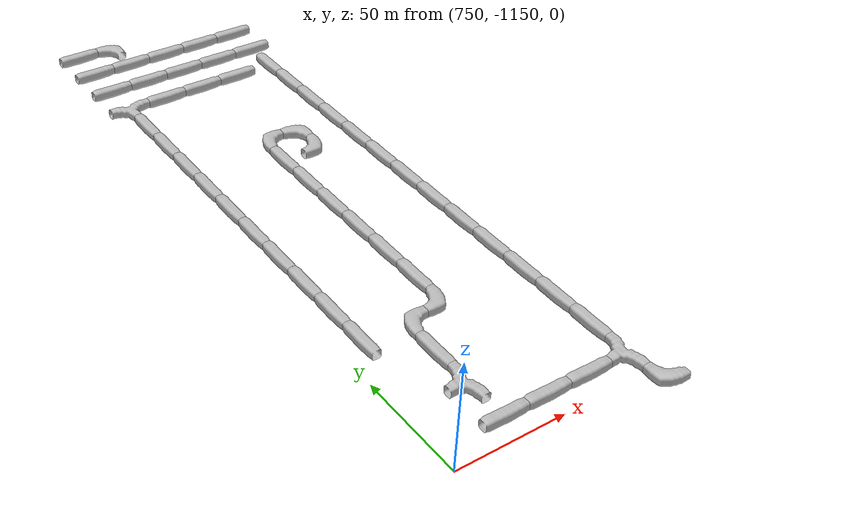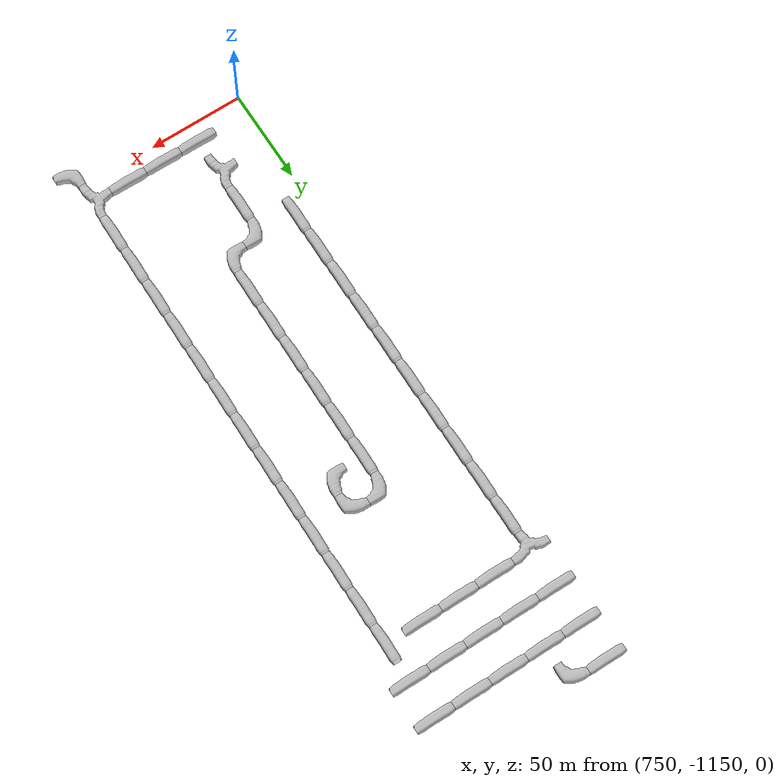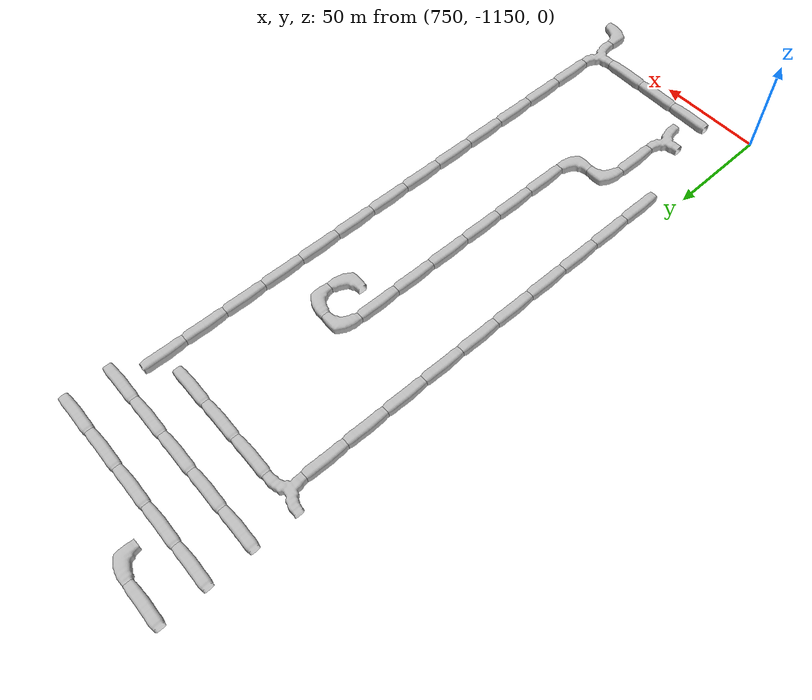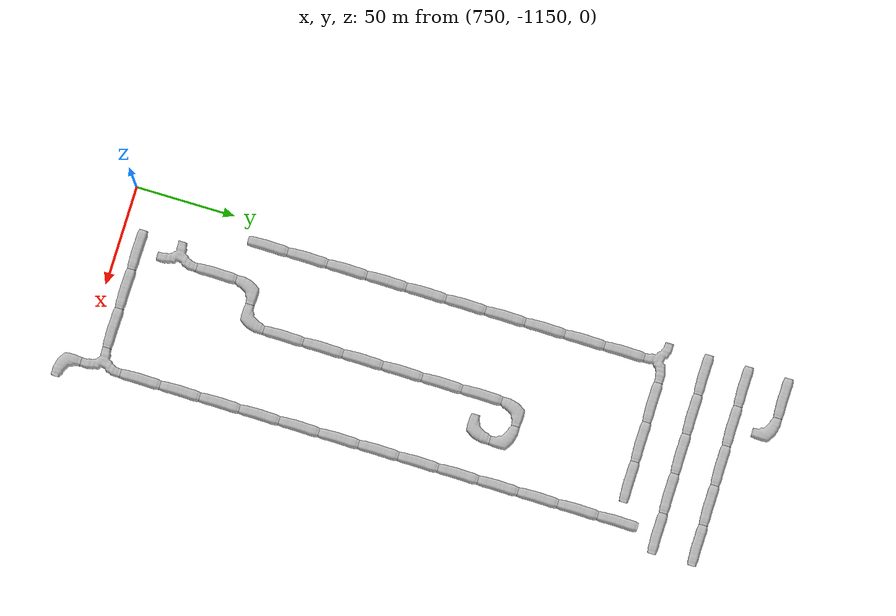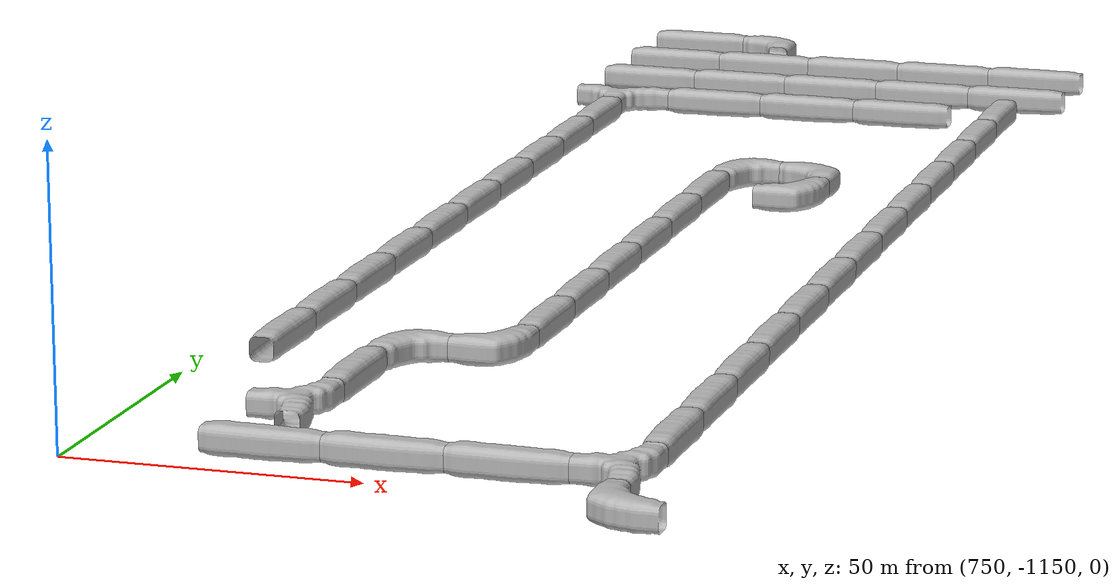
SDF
<sdf version="1.6">
 <world name="cave_32000_32">
  <include>
   <static>true</static>
   <name>cave_42_-58</name>
   <pose>840 -1160 0 0 0 0.0</pose>
   <uri>model://cave_L_20m</uri>
  </include>
  <include>
   <static>true</static>
   <name>cave_42_-57</name>
   <pose>840 -1140 0 0 0 1.5707963267948966</pose>
   <uri>model://cave_3way_20m</uri>
  </include>
  <include>
   <static>true</static>
   <name>cave_41_-57</name>
   <pose>820 -1140 0 0 0 1.5707963267948966</pose>
   <uri>model://cave_straight_20m</uri>
  </include>
  <include>
   <static>true</static>
   <name>cave_40_-57</name>
   <pose>800 -1140 0 0 0 1.5707963267948966</pose>
   <uri>model://cave_straight_20m</uri>
  </include>
  <include>
   <static>true</static>
   <name>cave_39_-57</name>
   <pose>780 -1140 0 0 0 1.5707963267948966</pose>
   <uri>model://cave_straight_20m</uri>
  </include>
  <include>
   <static>true</static>
   <name>cave_38_-44</name>
   <pose>760 -880 0 0 0 3.141592653589793</pose>
   <uri>model://cave_3way_20m</uri>
  </include>
  <include>
   <static>true</static>
   <name>cave_39_-44</name>
   <pose>780 -880 0 0 0 1.5707963267948966</pose>
   <uri>model://cave_straight_20m</uri>
  </include>
  <include>
   <static>true</static>
   <name>cave_40_-44</name>
   <pose>800 -880 0 0 0 1.5707963267948966</pose>
   <uri>model://cave_straight_20m</uri>
  </include>
  <include>
   <static>true</static>
   <name>cave_41_-44</name>
   <pose>820 -880 0 0 0 1.5707963267948966</pose>
   <uri>model://cave_straight_20m</uri>
  </include>
  <include>
   <static>true</static>
   <name>cave_38_-45</name>
   <pose>760 -900 0 0 0 0.0</pose>
   <uri>model://cave_straight_20m</uri>
  </include>
  <include>
   <static>true</static>
   <name>cave_38_-46</name>
   <pose>760 -920 0 0 0 0.0</pose>
   <uri>model://cave_straight_20m</uri>
  </include>
  <include>
   <static>true</static>
   <name>cave_38_-47</name>
   <pose>760 -940 0 0 0 0.0</pose>
   <uri>model://cave_straight_20m</uri>
  </include>
  <include>
   <static>true</static>
   <name>cave_38_-48</name>
   <pose>760 -960 0 0 0 0.0</pose>
   <uri>model://cave_straight_20m</uri>
  </include>
  <include>
   <static>true</static>
   <name>cave_38_-49</name>
   <pose>760 -980 0 0 0 0.0</pose>
   <uri>model://cave_straight_20m</uri>
  </include>
  <include>
   <static>true</static>
   <name>cave_38_-50</name>
   <pose>760 -1000 0 0 0 0.0</pose>
   <uri>model://cave_straight_20m</uri>
  </include>
  <include>
   <static>true</static>
   <name>cave_38_-51</name>
   <pose>760 -1020 0 0 0 0.0</pose>
   <uri>model://cave_straight_20m</uri>
  </include>
  <include>
   <static>true</static>
   <name>cave_38_-52</name>
   <pose>760 -1040 0 0 0 0.0</pose>
   <uri>model://cave_straight_20m</uri>
  </include>
  <include>
   <static>true</static>
   <name>cave_38_-53</name>
   <pose>760 -1060 0 0 0 0.0</pose>
   <uri>model://cave_straight_20m</uri>
  </include>
  <include>
   <static>true</static>
   <name>cave_38_-54</name>
   <pose>760 -1080 0 0 0 0.0</pose>
   <uri>model://cave_straight_20m</uri>
  </include>
  <include>
   <static>true</static>
   <name>cave_39_-56</name>
   <pose>780 -1120 0 0 0 1.5707963267948966</pose>
   <uri>model://cave_3way_20m</uri>
  </include>
  <include>
   <static>true</static>
   <name>cave_39_-55</name>
   <pose>780 -1100 0 0 0 0.0</pose>
   <uri>model://cave_straight_20m</uri>
  </include>
  <include>
   <static>true</static>
   <name>cave_39_-54</name>
   <pose>780 -1080 0 0 0 -1.5707963267948966</pose>
   <uri>model://cave_L_20m</uri>
  </include>
  <include>
   <static>true</static>
   <name>cave_40_-54</name>
   <pose>800 -1080 0 0 0 1.5707963267948966</pose>
   <uri>model://cave_L_20m</uri>
  </include>
  <include>
   <static>true</static>
   <name>cave_40_-53</name>
   <pose>800 -1060 0 0 0 0.0</pose>
   <uri>model://cave_straight_20m</uri>
  </include>
  <include>
   <static>true</static>
   <name>cave_40_-52</name>
   <pose>800 -1040 0 0 0 0.0</pose>
   <uri>model://cave_straight_20m</uri>
  </include>
  <include>
   <static>true</static>
   <name>cave_40_-51</name>
   <pose>800 -1020 0 0 0 0.0</pose>
   <uri>model://cave_straight_20m</uri>
  </include>
  <include>
   <static>true</static>
   <name>cave_40_-50</name>
   <pose>800 -1000 0 0 0 0.0</pose>
   <uri>model://cave_straight_20m</uri>
  </include>
  <include>
   <static>true</static>
   <name>cave_40_-49</name>
   <pose>800 -980 0 0 0 0.0</pose>
   <uri>model://cave_straight_20m</uri>
  </include>
  <include>
   <static>true</static>
   <name>cave_40_-48</name>
   <pose>800 -960 0 0 0 0.0</pose>
   <uri>model://cave_straight_20m</uri>
  </include>
  <include>
   <static>true</static>
   <name>cave_40_-47</name>
   <pose>800 -940 0 0 0 -1.5707963267948966</pose>
   <uri>model://cave_L_20m</uri>
  </include>
  <include>
   <static>true</static>
   <name>cave_41_-47</name>
   <pose>820 -940 0 0 0 3.141592653589793</pose>
   <uri>model://cave_L_20m</uri>
  </include>
  <include>
   <static>true</static>
   <name>cave_41_-48</name>
   <pose>820 -960 0 0 0 1.5707963267948966</pose>
   <uri>model://cave_L_20m</uri>
  </include>
  <include>
   <static>true</static>
   <name>cave_42_-56</name>
   <pose>840 -1120 0 0 0 0.0</pose>
   <uri>model://cave_straight_20m</uri>
  </include>
  <include>
   <static>true</static>
   <name>cave_42_-55</name>
   <pose>840 -1100 0 0 0 0.0</pose>
   <uri>model://cave_straight_20m</uri>
  </include>
  <include>
   <static>true</static>
   <name>cave_42_-54</name>
   <pose>840 -1080 0 0 0 0.0</pose>
   <uri>model://cave_straight_20m</uri>
  </include>
  <include>
   <static>true</static>
   <name>cave_42_-53</name>
   <pose>840 -1060 0 0 0 0.0</pose>
   <uri>model://cave_straight_20m</uri>
  </include>
  <include>
   <static>true</static>
   <name>cave_42_-52</name>
   <pose>840 -1040 0 0 0 0.0</pose>
   <uri>model://cave_straight_20m</uri>
  </include>
  <include>
   <static>true</static>
   <name>cave_42_-51</name>
   <pose>840 -1020 0 0 0 0.0</pose>
   <uri>model://cave_straight_20m</uri>
  </include>
  <include>
   <static>true</static>
   <name>cave_42_-50</name>
   <pose>840 -1000 0 0 0 0.0</pose>
   <uri>model://cave_straight_20m</uri>
  </include>
  <include>
   <static>true</static>
   <name>cave_42_-49</name>
   <pose>840 -980 0 0 0 0.0</pose>
   <uri>model://cave_straight_20m</uri>
  </include>
  <include>
   <static>true</static>
   <name>cave_42_-48</name>
   <pose>840 -960 0 0 0 0.0</pose>
   <uri>model://cave_straight_20m</uri>
  </include>
  <include>
   <static>true</static>
   <name>cave_42_-47</name>
   <pose>840 -940 0 0 0 0.0</pose>
   <uri>model://cave_straight_20m</uri>
  </include>
  <include>
   <static>true</static>
   <name>cave_42_-46</name>
   <pose>840 -920 0 0 0 0.0</pose>
   <uri>model://cave_straight_20m</uri>
  </include>
  <include>
   <static>true</static>
   <name>cave_42_-45</name>
   <pose>840 -900 0 0 0 0.0</pose>
   <uri>model://cave_straight_20m</uri>
  </include>
  <include>
   <static>true</static>
   <name>cave_42_-44</name>
   <pose>840 -880 0 0 0 0.0</pose>
   <uri>model://cave_straight_20m</uri>
  </include>
  <include>
   <static>true</static>
   <name>cave_38_-42</name>
   <pose>760 -840 0 0 0 1.5707963267948966</pose>
   <uri>model://cave_straight_20m</uri>
  </include>
  <include>
   <static>true</static>
   <name>cave_39_-42</name>
   <pose>780 -840 0 0 0 1.5707963267948966</pose>
   <uri>model://cave_straight_20m</uri>
  </include>
  <include>
   <static>true</static>
   <name>cave_40_-42</name>
   <pose>800 -840 0 0 0 1.5707963267948966</pose>
   <uri>model://cave_straight_20m</uri>
  </include>
  <include>
   <static>true</static>
   <name>cave_41_-42</name>
   <pose>820 -840 0 0 0 1.5707963267948966</pose>
   <uri>model://cave_straight_20m</uri>
  </include>
  <include>
   <static>true</static>
   <name>cave_42_-42</name>
   <pose>840 -840 0 0 0 1.5707963267948966</pose>
   <uri>model://cave_straight_20m</uri>
  </include>
  <include>
   <static>true</static>
   <name>cave_38_-43</name>
   <pose>760 -860 0 0 0 1.5707963267948966</pose>
   <uri>model://cave_straight_20m</uri>
  </include>
  <include>
   <static>true</static>
   <name>cave_39_-43</name>
   <pose>780 -860 0 0 0 1.5707963267948966</pose>
   <uri>model://cave_straight_20m</uri>
  </include>
  <include>
   <static>true</static>
   <name>cave_40_-43</name>
   <pose>800 -860 0 0 0 1.5707963267948966</pose>
   <uri>model://cave_straight_20m</uri>
  </include>
  <include>
   <static>true</static>
   <name>cave_41_-43</name>
   <pose>820 -860 0 0 0 1.5707963267948966</pose>
   <uri>model://cave_straight_20m</uri>
  </include>
  <include>
   <static>true</static>
   <name>cave_42_-43</name>
   <pose>840 -860 0 0 0 1.5707963267948966</pose>
   <uri>model://cave_straight_20m</uri>
  </include>
  <include>
   <static>true</static>
   <name>cave_38_-41</name>
   <pose>760 -820 0 0 0 1.5707963267948966</pose>
   <uri>model://cave_straight_20m</uri>
  </include>
  <include>
   <static>true</static>
   <name>cave_39_-41</name>
   <pose>780 -820 0 0 0 3.141592653589793</pose>
   <uri>model://cave_L_20m</uri>
  </include>
 </world>
</sdf>
